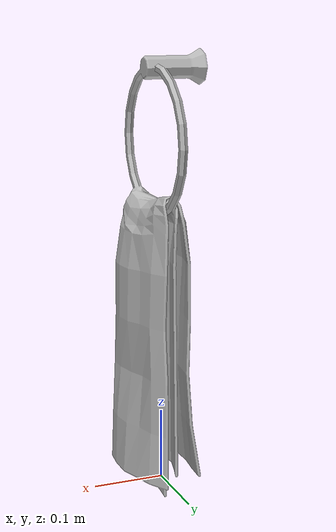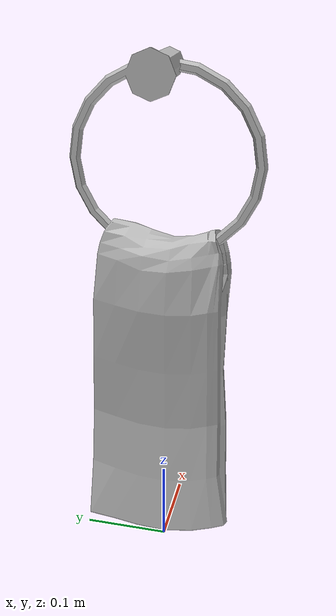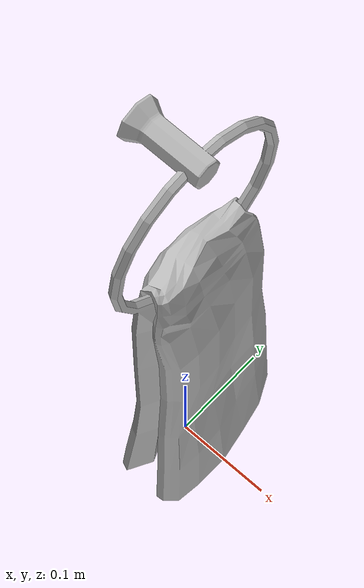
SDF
<?xml version='1.0'?>
<sdf version='1.4'>
  <model name='s__1326'>
    <pose>0 0 0 0 0 0</pose>
    <static>true</static>
    <link name='link'>
      <collision name='collision'>
        <pose>0 0 0 0 0 0</pose>
        <geometry>
          <box>
            <size>0.11 0.21 2</size>
          </box>
        </geometry>
      </collision>
      <visual name='visual'>
        <pose>0 0 0 0 0 0</pose>
        <geometry>
          <mesh><uri>model://s__1326/s__1326.dae</uri></mesh>
        </geometry>
      </visual>
    </link>
  </model>
</sdf>
